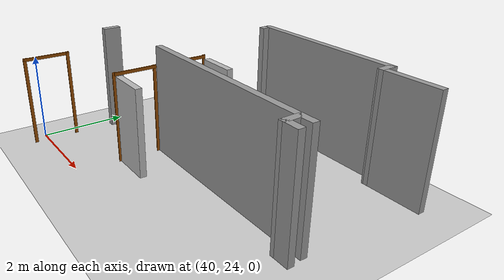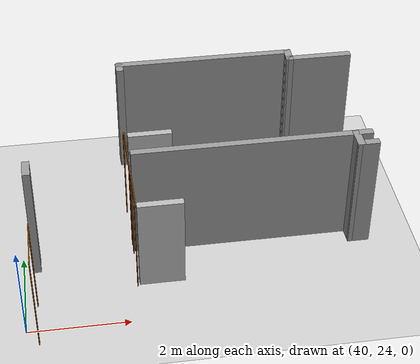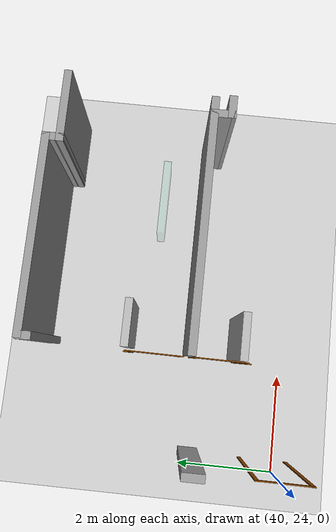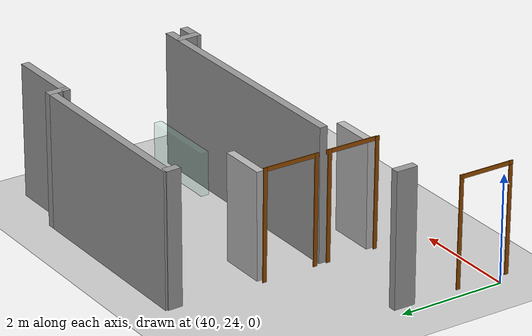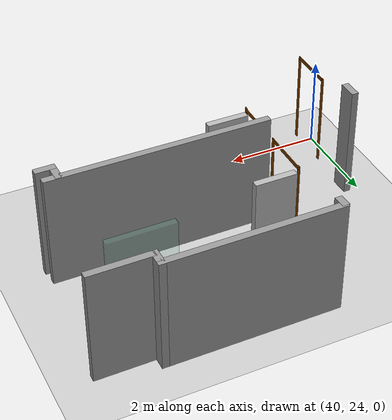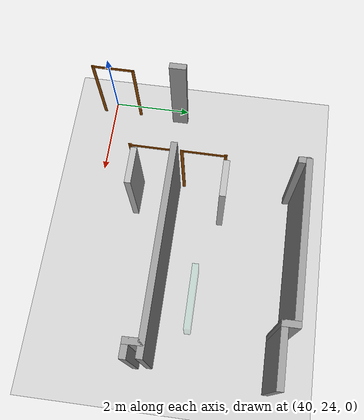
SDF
<sdf version="1.6">
 <world name="default">
  <model name="ground_plane">
   <static>1</static>
   <link name="link">
    <collision name="collision">
     <geometry><plane><normal>0 0 1</normal><size>100 100</size></plane></geometry>
     <surface><friction><ode><mu>100</mu><mu2>50</mu2></ode></friction></surface>
    </collision>
    <visual name="visual">
     <cast_shadows>0</cast_shadows>
     <geometry><plane><normal>0 0 1</normal><size>100 100</size></plane></geometry>
     <material>
      <script><uri>file://media/materials/scripts/gazebo.material</uri><name>Gazebo/Grey</name></script>
     </material>
    </visual>
   </link>
  </model>
  <model name="CVSSP">
   <pose>23.8714 24.094 0 0 -0 0</pose>
   <link name="Wall_145">
    <collision name="Wall_145_Collision">
     <geometry><box><size>3.74924 0.15 2.5</size></box></geometry>
     <pose>0 0 1.25 0 -0 0</pose>
    </collision>
    <visual name="Wall_145_Visual">
     <pose>0 0 1.25 0 -0 0</pose>
     <geometry><box><size>3.74924 0.15 2.5</size></box></geometry>
     <material>
      <script><uri>file://media/materials/scripts/gazebo.material</uri><name>Gazebo/Grey</name></script>
      <ambient>0.588235 0.588235 0.588235 1</ambient>
     </material>
    </visual>
    <pose>20.2524 4.95267 0 0 -0 0</pose>
   </link>
   <link name="Wall_146">
    <collision name="Wall_146_Collision">
     <geometry><box><size>0.407089 0.15 2.5</size></box></geometry>
     <pose>0 0 1.25 0 -0 0</pose>
    </collision>
    <visual name="Wall_146_Visual">
     <pose>0 0 1.25 0 -0 0</pose>
     <geometry><box><size>0.407089 0.15 2.5</size></box></geometry>
     <material>
      <script><uri>file://media/materials/scripts/gazebo.material</uri><name>Gazebo/Grey</name></script>
      <ambient>1 1 1 1</ambient>
     </material>
    </visual>
    <pose>22.0521 4.82421 0 0 0 -1.57054</pose>
   </link>
   <link name="Wall_147">
    <collision name="Wall_147_Collision">
     <geometry><box><size>1.39069 0.15 2.5</size></box></geometry>
     <pose>0 0 1.25 0 -0 0</pose>
    </collision>
    <visual name="Wall_147_Visual">
     <pose>0 0 1.25 0 -0 0</pose>
     <geometry><box><size>1.39069 0.15 2.5</size></box></geometry>
     <material>
      <script><uri>file://media/materials/scripts/gazebo.material</uri><name>Gazebo/Grey</name></script>
      <ambient>0.588235 0.588235 0.588235 1</ambient>
     </material>
    </visual>
    <pose>22.6726 4.69724 0 0 -0 0.002417</pose>
   </link>
   <link name="Wall_172">
    <collision name="Wall_172_Collision">
     <geometry><box><size>4.75 0.15 2.5</size></box></geometry>
     <pose>0 0 1.25 0 -0 0</pose>
    </collision>
    <visual name="Wall_172_Visual">
     <pose>0 0 1.25 0 -0 0</pose>
     <geometry><box><size>4.75 0.15 2.5</size></box></geometry>
     <material>
      <script><uri>file://media/materials/scripts/gazebo.material</uri><name>Gazebo/Grey</name></script>
      <ambient>0.588235 0.588235 0.588235 1</ambient>
     </material>
    </visual>
    <pose>20.7514 1.93058 0 0 -0 0</pose>
   </link>
   <link name="Wall_729">
    <collision name="Wall_729_Collision">
     <geometry><box><size>0.409263 0.15 2.5</size></box></geometry>
     <pose>0 0 1.25 0 -0 0</pose>
    </collision>
    <visual name="Wall_729_Visual">
     <pose>0 0 1.25 0 -0 0</pose>
     <geometry><box><size>0.409263 0.15 2.5</size></box></geometry>
     <material>
      <script><uri>file://media/materials/scripts/gazebo.material</uri><name>Gazebo/Grey</name></script>
      <ambient>1 1 1 1</ambient>
     </material>
    </visual>
    <pose>16.3949 1.72388 0 0 -0 1.57329</pose>
   </link>
   <link name="Wall_736">
    <collision name="Wall_736_Collision">
     <geometry><box><size>0.438586 0.15 2.5</size></box></geometry>
     <pose>0 0 1.25 0 -0 0</pose>
    </collision>
    <visual name="Wall_736_Visual">
     <pose>0 0 1.25 0 -0 0</pose>
     <geometry><box><size>0.438586 0.15 2.5</size></box></geometry>
     <material>
      <script><uri>file://media/materials/scripts/gazebo.material</uri><name>Gazebo/Grey</name></script>
      <ambient>1 1 1 1</ambient>
     </material>
    </visual>
    <pose>22.952 1.6054 0 0 -0 3.14159</pose>
   </link>
   <link name="Wall_737">
    <collision name="Wall_737_Collision">
     <geometry><box><size>0.457198 0.15 2.5</size></box></geometry>
     <pose>0 0 1.25 0 -0 0</pose>
    </collision>
    <visual name="Wall_737_Visual">
     <pose>0 0 1.25 0 -0 0</pose>
     <geometry><box><size>0.457198 0.15 2.5</size></box></geometry>
     <material>
      <script><uri>file://media/materials/scripts/gazebo.material</uri><name>Gazebo/Grey</name></script>
      <ambient>1 1 1 1</ambient>
     </material>
    </visual>
    <pose>22.8034 1.75843 0 0 -0 1.59936</pose>
   </link>
   <link name="Wall_82">
    <collision name="Wall_82_Collision">
     <geometry><box><size>0.279389 0.15 2.5</size></box></geometry>
     <pose>0 0 1.25 0 -0 0</pose>
    </collision>
    <visual name="Wall_82_Visual">
     <pose>0 0 1.25 0 -0 0</pose>
     <geometry><box><size>0.279389 0.15 2.5</size></box></geometry>
     <material>
      <script><uri>file://media/materials/scripts/gazebo.material</uri><name>Gazebo/Grey</name></script>
      <ambient>1 1 1 1</ambient>
     </material>
    </visual>
    <pose>18.435 4.85136 0 0 -0 1.60628</pose>
   </link>
   <static>1</static>
  </model>
  <model name="window_0_clone_clone">
   <link name="link">
    <inertial>
     <mass>0.185318</mass>
     <inertia>
      <ixx>0.0157792</ixx>
      <ixy>0</ixy>
      <ixz>0</ixz>
      <iyy>0.0398142</iyy>
      <iyz>0</iyz>
      <izz>0.0247071</izz>
     </inertia>
    </inertial>
    <visual name="visual">
     <geometry><box><size>1.50046 0.147514 0.811116</size></box></geometry>
     <material>
      <script><name>Gazebo/Grey</name><uri>file://media/materials/scripts/gazebo.material</uri></script>
      <shader type="pixel"><normal_map>__default__</normal_map></shader>
      <ambient>0.435 0.796 0.675 1</ambient>
      <diffuse>0.7 0.7 0.7 1</diffuse>
      <specular>0.01 0.01 0.01 1</specular>
      <emissive>0 0 0 1</emissive>
     </material>
     <transparency>0.8</transparency>
    </visual>
    <collision name="collision">
     <geometry><box><size>1.50046 0.147514 0.811116</size></box></geometry>
     <surface>
      <friction>
       <ode><mu>1</mu><mu2>1</mu2><fdir1>0 0 0</fdir1><slip1>0</slip1><slip2>0</slip2></ode>
       <torsional>
        <coefficient>1</coefficient>
        <patch_radius>0</patch_radius>
        <surface_radius>0</surface_radius>
        <use_patch_radius>1</use_patch_radius>
        <ode><slip>0</slip></ode>
       </torsional>
      </friction>
      <bounce><restitution_coefficient>0</restitution_coefficient><threshold>1e+06</threshold></bounce>
      <contact>
       <collide_without_contact>0</collide_without_contact>
       <collide_without_contact_bitmask>1</collide_without_contact_bitmask>
       <collide_bitmask>1</collide_bitmask>
       <ode>
        <soft_cfm>0</soft_cfm>
        <soft_erp>0.2</soft_erp>
        <kp>1e+13</kp>
        <kd>1</kd>
        <max_vel>0.01</max_vel>
        <min_depth>0</min_depth>
       </ode>
       <bullet>
        <split_impulse>1</split_impulse>
        <split_impulse_penetration_threshold>-0.01</split_impulse_penetration_threshold>
        <soft_cfm>0</soft_cfm>
        <soft_erp>0.2</soft_erp>
        <kp>1e+13</kp>
        <kd>1</kd>
       </bullet>
      </contact>
     </surface>
    </collision>
   </link>
   <static>1</static>
   <pose>45.3904 26.8226 0.904256 0 -0 0</pose>
  </model>
  <model name="door_clone">
   <link name="link_0">
    <visual name="visual">
     <pose>0 0 1 0 -0 0</pose>
     <geometry><box><size>0.9 0.15 2</size></box></geometry>
     <material>
      <script>
       <uri>model://door/materials/scripts</uri>
       <uri>model://door/materials/textures</uri>
       <name>door</name>
      </script>
     </material>
    </visual>
    <collision name="collision">
     <pose>0 0 1 0 -0 0</pose>
     <geometry><box><size>0.9 0.15 2</size></box></geometry>
    </collision>
   </link>
   <static>1</static>
   <pose>42.743 27.2361 0 0 -0 0</pose>
  </model>
  <model name="door_clone_clone">
   <link name="link_0">
    <visual name="visual">
     <pose>0 0 1 0 -0 0</pose>
     <geometry><box><size>0.9 0.15 2</size></box></geometry>
     <material>
      <script>
       <uri>model://door/materials/scripts</uri>
       <uri>model://door/materials/textures</uri>
       <name>door</name>
      </script>
     </material>
    </visual>
    <collision name="collision">
     <pose>0 0 1 0 -0 0</pose>
     <geometry><box><size>0.9 0.15 2</size></box></geometry>
    </collision>
   </link>
   <static>1</static>
   <pose>42.7008 25.0544 0 0 -0 0</pose>
  </model>
  <model name="oak_frame_clone_3_clone_0_clone_clone_clone_4">
   <link name="link">
    <inertial>
     <mass>1</mass>
     <inertia>
      <ixx>0.166667</ixx>
      <ixy>0</ixy>
      <ixz>0</ixz>
      <iyy>0.166667</iyy>
      <iyz>0</iyz>
      <izz>0.166667</izz>
     </inertia>
    </inertial>
    <visual name="visual">
     <geometry><box><size>0.018685 0.07556 1.01014</size></box></geometry>
     <material>
      <script><name>Gazebo/Grey</name><uri>file://media/materials/scripts/gazebo.material</uri></script>
      <shader type="pixel"><normal_map>__default__</normal_map></shader>
      <diffuse>0.58 0.29 0 0</diffuse>
      <ambient>0.58 0.29 0 1</ambient>
      <specular>0.01 0.01 0.01 1</specular>
      <emissive>0 0 0 1</emissive>
     </material>
    </visual>
    <collision name="collision">
     <geometry><box><size>0.018685 0.07556 1.01014</size></box></geometry>
     <surface>
      <friction>
       <ode><mu>1</mu><mu2>1</mu2><fdir1>0 0 0</fdir1><slip1>0</slip1><slip2>0</slip2></ode>
       <torsional>
        <coefficient>1</coefficient>
        <patch_radius>0</patch_radius>
        <surface_radius>0</surface_radius>
        <use_patch_radius>1</use_patch_radius>
        <ode><slip>0</slip></ode>
       </torsional>
      </friction>
      <bounce><restitution_coefficient>0</restitution_coefficient><threshold>1e+06</threshold></bounce>
      <contact>
       <collide_without_contact>0</collide_without_contact>
       <collide_without_contact_bitmask>1</collide_without_contact_bitmask>
       <collide_bitmask>1</collide_bitmask>
       <ode>
        <soft_cfm>0</soft_cfm>
        <soft_erp>0.2</soft_erp>
        <kp>1e+13</kp>
        <kd>1</kd>
        <max_vel>0.01</max_vel>
        <min_depth>0</min_depth>
       </ode>
       <bullet>
        <split_impulse>1</split_impulse>
        <split_impulse_penetration_threshold>-0.01</split_impulse_penetration_threshold>
        <soft_cfm>0</soft_cfm>
        <soft_erp>0.2</soft_erp>
        <kp>1e+13</kp>
        <kd>1</kd>
       </bullet>
      </contact>
     </surface>
    </collision>
   </link>
   <static>1</static>
   <pose>42.2238 26.7166 2.04113 1.56983 0.062428 -0.004568</pose>
  </model>
  <model name="oak_frame_clone_3_clone_0_clone_clone_clone_5">
   <link name="link">
    <inertial>
     <mass>1</mass>
     <inertia>
      <ixx>0.166667</ixx>
      <ixy>0</ixy>
      <ixz>0</ixz>
      <iyy>0.166667</iyy>
      <iyz>0</iyz>
      <izz>0.166667</izz>
     </inertia>
    </inertial>
    <visual name="visual">
     <geometry><box><size>0.018685 0.07556 1.01014</size></box></geometry>
     <material>
      <script><name>Gazebo/Grey</name><uri>file://media/materials/scripts/gazebo.material</uri></script>
      <shader type="pixel"><normal_map>__default__</normal_map></shader>
      <diffuse>0.58 0.29 0 0</diffuse>
      <ambient>0.58 0.29 0 1</ambient>
      <specular>0.01 0.01 0.01 1</specular>
      <emissive>0 0 0 1</emissive>
     </material>
    </visual>
    <collision name="collision">
     <geometry><box><size>0.018685 0.07556 1.01014</size></box></geometry>
     <surface>
      <friction>
       <ode><mu>1</mu><mu2>1</mu2><fdir1>0 0 0</fdir1><slip1>0</slip1><slip2>0</slip2></ode>
       <torsional>
        <coefficient>1</coefficient>
        <patch_radius>0</patch_radius>
        <surface_radius>0</surface_radius>
        <use_patch_radius>1</use_patch_radius>
        <ode><slip>0</slip></ode>
       </torsional>
      </friction>
      <bounce><restitution_coefficient>0</restitution_coefficient><threshold>1e+06</threshold></bounce>
      <contact>
       <collide_without_contact>0</collide_without_contact>
       <collide_without_contact_bitmask>1</collide_without_contact_bitmask>
       <collide_bitmask>1</collide_bitmask>
       <ode>
        <soft_cfm>0</soft_cfm>
        <soft_erp>0.2</soft_erp>
        <kp>1e+13</kp>
        <kd>1</kd>
        <max_vel>0.01</max_vel>
        <min_depth>0</min_depth>
       </ode>
       <bullet>
        <split_impulse>1</split_impulse>
        <split_impulse_penetration_threshold>-0.01</split_impulse_penetration_threshold>
        <soft_cfm>0</soft_cfm>
        <soft_erp>0.2</soft_erp>
        <kp>1e+13</kp>
        <kd>1</kd>
       </bullet>
      </contact>
     </surface>
    </collision>
   </link>
   <static>1</static>
   <pose>42.2271 25.4756 2.04113 1.56983 0.062428 -0.004568</pose>
  </model>
  <model name="oak_frame_clone_3_clone_1_clone_1_clone_3_clone">
   <link name="link">
    <inertial>
     <mass>1</mass>
     <inertia>
      <ixx>0.166667</ixx>
      <ixy>0</ixy>
      <ixz>0</ixz>
      <iyy>0.166667</iyy>
      <iyz>0</iyz>
      <izz>0.166667</izz>
     </inertia>
    </inertial>
    <visual name="visual">
     <geometry><box><size>0.018685 0.07556 2.09672</size></box></geometry>
     <material>
      <script><name>Gazebo/Grey</name><uri>file://media/materials/scripts/gazebo.material</uri></script>
      <shader type="pixel"><normal_map>__default__</normal_map></shader>
      <diffuse>0.58 0.29 0 0</diffuse>
      <ambient>0.58 0.29 0 1</ambient>
      <specular>0.01 0.01 0.01 1</specular>
      <emissive>0 0 0 1</emissive>
     </material>
    </visual>
    <collision name="collision">
     <geometry><box><size>0.018685 0.07556 2.09672</size></box></geometry>
     <surface>
      <friction>
       <ode><mu>1</mu><mu2>1</mu2><fdir1>0 0 0</fdir1><slip1>0</slip1><slip2>0</slip2></ode>
       <torsional>
        <coefficient>1</coefficient>
        <patch_radius>0</patch_radius>
        <surface_radius>0</surface_radius>
        <use_patch_radius>1</use_patch_radius>
        <ode><slip>0</slip></ode>
       </torsional>
      </friction>
      <bounce><restitution_coefficient>0</restitution_coefficient><threshold>1e+06</threshold></bounce>
      <contact>
       <collide_without_contact>0</collide_without_contact>
       <collide_without_contact_bitmask>1</collide_without_contact_bitmask>
       <collide_bitmask>1</collide_bitmask>
       <ode>
        <soft_cfm>0</soft_cfm>
        <soft_erp>0.2</soft_erp>
        <kp>1e+13</kp>
        <kd>1</kd>
        <max_vel>0.01</max_vel>
        <min_depth>0</min_depth>
       </ode>
       <bullet>
        <split_impulse>1</split_impulse>
        <split_impulse_penetration_threshold>-0.01</split_impulse_penetration_threshold>
        <soft_cfm>0</soft_cfm>
        <soft_erp>0.2</soft_erp>
        <kp>1e+13</kp>
        <kd>1</kd>
       </bullet>
      </contact>
     </surface>
    </collision>
   </link>
   <static>1</static>
   <pose>42.2096 27.208 1.03352 -0.008142 0.000764 -3.13056</pose>
  </model>
  <model name="oak_frame_clone_3_clone_1_clone_1_clone_3_clone_0">
   <link name="link">
    <inertial>
     <mass>1</mass>
     <inertia>
      <ixx>0.166667</ixx>
      <ixy>0</ixy>
      <ixz>0</ixz>
      <iyy>0.166667</iyy>
      <iyz>0</iyz>
      <izz>0.166667</izz>
     </inertia>
    </inertial>
    <visual name="visual">
     <geometry><box><size>0.018685 0.07556 2.09672</size></box></geometry>
     <material>
      <script><name>Gazebo/Grey</name><uri>file://media/materials/scripts/gazebo.material</uri></script>
      <shader type="pixel"><normal_map>__default__</normal_map></shader>
      <diffuse>0.58 0.29 0 0</diffuse>
      <ambient>0.58 0.29 0 1</ambient>
      <specular>0.01 0.01 0.01 1</specular>
      <emissive>0 0 0 1</emissive>
     </material>
    </visual>
    <collision name="collision">
     <geometry><box><size>0.018685 0.07556 2.09672</size></box></geometry>
     <surface>
      <friction>
       <ode><mu>1</mu><mu2>1</mu2><fdir1>0 0 0</fdir1><slip1>0</slip1><slip2>0</slip2></ode>
       <torsional>
        <coefficient>1</coefficient>
        <patch_radius>0</patch_radius>
        <surface_radius>0</surface_radius>
        <use_patch_radius>1</use_patch_radius>
        <ode><slip>0</slip></ode>
       </torsional>
      </friction>
      <bounce><restitution_coefficient>0</restitution_coefficient><threshold>1e+06</threshold></bounce>
      <contact>
       <collide_without_contact>0</collide_without_contact>
       <collide_without_contact_bitmask>1</collide_without_contact_bitmask>
       <collide_bitmask>1</collide_bitmask>
       <ode>
        <soft_cfm>0</soft_cfm>
        <soft_erp>0.2</soft_erp>
        <kp>1e+13</kp>
        <kd>1</kd>
        <max_vel>0.01</max_vel>
        <min_depth>0</min_depth>
       </ode>
       <bullet>
        <split_impulse>1</split_impulse>
        <split_impulse_penetration_threshold>-0.01</split_impulse_penetration_threshold>
        <soft_cfm>0</soft_cfm>
        <soft_erp>0.2</soft_erp>
        <kp>1e+13</kp>
        <kd>1</kd>
       </bullet>
      </contact>
     </surface>
    </collision>
   </link>
   <static>1</static>
   <pose>42.2228 26.1854 1.03352 -0.008142 0.000764 -3.13056</pose>
  </model>
  <model name="oak_frame_clone_3_clone_1_clone_1_clone_3_clone_1">
   <link name="link">
    <inertial>
     <mass>1</mass>
     <inertia>
      <ixx>0.166667</ixx>
      <ixy>0</ixy>
      <ixz>0</ixz>
      <iyy>0.166667</iyy>
      <iyz>0</iyz>
      <izz>0.166667</izz>
     </inertia>
    </inertial>
    <visual name="visual">
     <geometry><box><size>0.018685 0.07556 2.09672</size></box></geometry>
     <material>
      <script><name>Gazebo/Grey</name><uri>file://media/materials/scripts/gazebo.material</uri></script>
      <shader type="pixel"><normal_map>__default__</normal_map></shader>
      <diffuse>0.58 0.29 0 0</diffuse>
      <ambient>0.58 0.29 0 1</ambient>
      <specular>0.01 0.01 0.01 1</specular>
      <emissive>0 0 0 1</emissive>
     </material>
    </visual>
    <collision name="collision">
     <geometry><box><size>0.018685 0.07556 2.09672</size></box></geometry>
     <surface>
      <friction>
       <ode><mu>1</mu><mu2>1</mu2><fdir1>0 0 0</fdir1><slip1>0</slip1><slip2>0</slip2></ode>
       <torsional>
        <coefficient>1</coefficient>
        <patch_radius>0</patch_radius>
        <surface_radius>0</surface_radius>
        <use_patch_radius>1</use_patch_radius>
        <ode><slip>0</slip></ode>
       </torsional>
      </friction>
      <bounce><restitution_coefficient>0</restitution_coefficient><threshold>1e+06</threshold></bounce>
      <contact>
       <collide_without_contact>0</collide_without_contact>
       <collide_without_contact_bitmask>1</collide_without_contact_bitmask>
       <collide_bitmask>1</collide_bitmask>
       <ode>
        <soft_cfm>0</soft_cfm>
        <soft_erp>0.2</soft_erp>
        <kp>1e+13</kp>
        <kd>1</kd>
        <max_vel>0.01</max_vel>
        <min_depth>0</min_depth>
       </ode>
       <bullet>
        <split_impulse>1</split_impulse>
        <split_impulse_penetration_threshold>-0.01</split_impulse_penetration_threshold>
        <soft_cfm>0</soft_cfm>
        <soft_erp>0.2</soft_erp>
        <kp>1e+13</kp>
        <kd>1</kd>
       </bullet>
      </contact>
     </surface>
    </collision>
   </link>
   <static>1</static>
   <pose>42.2239 25.922 1.03352 -0.008142 0.000764 -3.13056</pose>
  </model>
  <model name="oak_frame_clone_3_clone_1_clone_1_clone_3_clone_2">
   <link name="link">
    <inertial>
     <mass>1</mass>
     <inertia>
      <ixx>0.166667</ixx>
      <ixy>0</ixy>
      <ixz>0</ixz>
      <iyy>0.166667</iyy>
      <iyz>0</iyz>
      <izz>0.166667</izz>
     </inertia>
    </inertial>
    <visual name="visual">
     <geometry><box><size>0.018685 0.07556 2.09672</size></box></geometry>
     <material>
      <script><name>Gazebo/Grey</name><uri>file://media/materials/scripts/gazebo.material</uri></script>
      <shader type="pixel"><normal_map>__default__</normal_map></shader>
      <diffuse>0.58 0.29 0 0</diffuse>
      <ambient>0.58 0.29 0 1</ambient>
      <specular>0.01 0.01 0.01 1</specular>
      <emissive>0 0 0 1</emissive>
     </material>
    </visual>
    <collision name="collision">
     <geometry><box><size>0.018685 0.07556 2.09672</size></box></geometry>
     <surface>
      <friction>
       <ode><mu>1</mu><mu2>1</mu2><fdir1>0 0 0</fdir1><slip1>0</slip1><slip2>0</slip2></ode>
       <torsional>
        <coefficient>1</coefficient>
        <patch_radius>0</patch_radius>
        <surface_radius>0</surface_radius>
        <use_patch_radius>1</use_patch_radius>
        <ode><slip>0</slip></ode>
       </torsional>
      </friction>
      <bounce><restitution_coefficient>0</restitution_coefficient><threshold>1e+06</threshold></bounce>
      <contact>
       <collide_without_contact>0</collide_without_contact>
       <collide_without_contact_bitmask>1</collide_without_contact_bitmask>
       <collide_bitmask>1</collide_bitmask>
       <ode>
        <soft_cfm>0</soft_cfm>
        <soft_erp>0.2</soft_erp>
        <kp>1e+13</kp>
        <kd>1</kd>
        <max_vel>0.01</max_vel>
        <min_depth>0</min_depth>
       </ode>
       <bullet>
        <split_impulse>1</split_impulse>
        <split_impulse_penetration_threshold>-0.01</split_impulse_penetration_threshold>
        <soft_cfm>0</soft_cfm>
        <soft_erp>0.2</soft_erp>
        <kp>1e+13</kp>
        <kd>1</kd>
       </bullet>
      </contact>
     </surface>
    </collision>
   </link>
   <static>1</static>
   <pose>42.2091 24.974 1.03352 -0.008142 0.000764 -3.13056</pose>
  </model>
  <model name="oak_frame_clone_3_clone_1_clone_1_clone_3_clone_3">
   <link name="link">
    <inertial>
     <mass>1</mass>
     <inertia>
      <ixx>0.166667</ixx>
      <ixy>0</ixy>
      <ixz>0</ixz>
      <iyy>0.166667</iyy>
      <iyz>0</iyz>
      <izz>0.166667</izz>
     </inertia>
    </inertial>
    <visual name="visual">
     <geometry><box><size>0.018685 0.07556 2.09672</size></box></geometry>
     <material>
      <script><name>Gazebo/Grey</name><uri>file://media/materials/scripts/gazebo.material</uri></script>
      <shader type="pixel"><normal_map>__default__</normal_map></shader>
      <diffuse>0.58 0.29 0 0</diffuse>
      <ambient>0.58 0.29 0 1</ambient>
      <specular>0.01 0.01 0.01 1</specular>
      <emissive>0 0 0 1</emissive>
     </material>
    </visual>
    <collision name="collision">
     <geometry><box><size>0.018685 0.07556 2.09672</size></box></geometry>
     <surface>
      <friction>
       <ode><mu>1</mu><mu2>1</mu2><fdir1>0 0 0</fdir1><slip1>0</slip1><slip2>0</slip2></ode>
       <torsional>
        <coefficient>1</coefficient>
        <patch_radius>0</patch_radius>
        <surface_radius>0</surface_radius>
        <use_patch_radius>1</use_patch_radius>
        <ode><slip>0</slip></ode>
       </torsional>
      </friction>
      <bounce><restitution_coefficient>0</restitution_coefficient><threshold>1e+06</threshold></bounce>
      <contact>
       <collide_without_contact>0</collide_without_contact>
       <collide_without_contact_bitmask>1</collide_without_contact_bitmask>
       <collide_bitmask>1</collide_bitmask>
       <ode>
        <soft_cfm>0</soft_cfm>
        <soft_erp>0.2</soft_erp>
        <kp>1e+13</kp>
        <kd>1</kd>
        <max_vel>0.01</max_vel>
        <min_depth>0</min_depth>
       </ode>
       <bullet>
        <split_impulse>1</split_impulse>
        <split_impulse_penetration_threshold>-0.01</split_impulse_penetration_threshold>
        <soft_cfm>0</soft_cfm>
        <soft_erp>0.2</soft_erp>
        <kp>1e+13</kp>
        <kd>1</kd>
       </bullet>
      </contact>
     </surface>
    </collision>
   </link>
   <static>1</static>
   <pose>40.232 23.7009 1.03352 -0.008142 0.000764 -3.13056</pose>
  </model>
  <model name="oak_frame_clone_3_clone_1_clone_1_clone_3_clone_4">
   <link name="link">
    <inertial>
     <mass>1</mass>
     <inertia>
      <ixx>0.166667</ixx>
      <ixy>0</ixy>
      <ixz>0</ixz>
      <iyy>0.166667</iyy>
      <iyz>0</iyz>
      <izz>0.166667</izz>
     </inertia>
    </inertial>
    <visual name="visual">
     <geometry><box><size>0.018685 0.07556 2.09672</size></box></geometry>
     <material>
      <script><name>Gazebo/Grey</name><uri>file://media/materials/scripts/gazebo.material</uri></script>
      <shader type="pixel"><normal_map>__default__</normal_map></shader>
      <diffuse>0.58 0.29 0 0</diffuse>
      <ambient>0.58 0.29 0 1</ambient>
      <specular>0.01 0.01 0.01 1</specular>
      <emissive>0 0 0 1</emissive>
     </material>
    </visual>
    <collision name="collision">
     <geometry><box><size>0.018685 0.07556 2.09672</size></box></geometry>
     <surface>
      <friction>
       <ode><mu>1</mu><mu2>1</mu2><fdir1>0 0 0</fdir1><slip1>0</slip1><slip2>0</slip2></ode>
       <torsional>
        <coefficient>1</coefficient>
        <patch_radius>0</patch_radius>
        <surface_radius>0</surface_radius>
        <use_patch_radius>1</use_patch_radius>
        <ode><slip>0</slip></ode>
       </torsional>
      </friction>
      <bounce><restitution_coefficient>0</restitution_coefficient><threshold>1e+06</threshold></bounce>
      <contact>
       <collide_without_contact>0</collide_without_contact>
       <collide_without_contact_bitmask>1</collide_without_contact_bitmask>
       <collide_bitmask>1</collide_bitmask>
       <ode>
        <soft_cfm>0</soft_cfm>
        <soft_erp>0.2</soft_erp>
        <kp>1e+13</kp>
        <kd>1</kd>
        <max_vel>0.01</max_vel>
        <min_depth>0</min_depth>
       </ode>
       <bullet>
        <split_impulse>1</split_impulse>
        <split_impulse_penetration_threshold>-0.01</split_impulse_penetration_threshold>
        <soft_cfm>0</soft_cfm>
        <soft_erp>0.2</soft_erp>
        <kp>1e+13</kp>
        <kd>1</kd>
       </bullet>
      </contact>
     </surface>
    </collision>
   </link>
   <static>1</static>
   <pose>40.2381 24.6938 1.03352 -0.008142 0.000764 -3.13056</pose>
  </model>
  <model name="oak_frame_clone_3_clone_0_clone_clone_clone_5_clone">
   <link name="link">
    <inertial>
     <mass>1</mass>
     <inertia>
      <ixx>0.166667</ixx>
      <ixy>0</ixy>
      <ixz>0</ixz>
      <iyy>0.166667</iyy>
      <iyz>0</iyz>
      <izz>0.166667</izz>
     </inertia>
    </inertial>
    <visual name="visual">
     <geometry><box><size>0.018685 0.07556 1.01014</size></box></geometry>
     <material>
      <script><name>Gazebo/Grey</name><uri>file://media/materials/scripts/gazebo.material</uri></script>
      <shader type="pixel"><normal_map>__default__</normal_map></shader>
      <diffuse>0.58 0.29 0 0</diffuse>
      <ambient>0.58 0.29 0 1</ambient>
      <specular>0.01 0.01 0.01 1</specular>
      <emissive>0 0 0 1</emissive>
     </material>
    </visual>
    <collision name="collision">
     <geometry><box><size>0.018685 0.07556 1.01014</size></box></geometry>
     <surface>
      <friction>
       <ode><mu>1</mu><mu2>1</mu2><fdir1>0 0 0</fdir1><slip1>0</slip1><slip2>0</slip2></ode>
       <torsional>
        <coefficient>1</coefficient>
        <patch_radius>0</patch_radius>
        <surface_radius>0</surface_radius>
        <use_patch_radius>1</use_patch_radius>
        <ode><slip>0</slip></ode>
       </torsional>
      </friction>
      <bounce><restitution_coefficient>0</restitution_coefficient><threshold>1e+06</threshold></bounce>
      <contact>
       <collide_without_contact>0</collide_without_contact>
       <collide_without_contact_bitmask>1</collide_without_contact_bitmask>
       <collide_bitmask>1</collide_bitmask>
       <ode>
        <soft_cfm>0</soft_cfm>
        <soft_erp>0.2</soft_erp>
        <kp>1e+13</kp>
        <kd>1</kd>
        <max_vel>0.01</max_vel>
        <min_depth>0</min_depth>
       </ode>
       <bullet>
        <split_impulse>1</split_impulse>
        <split_impulse_penetration_threshold>-0.01</split_impulse_penetration_threshold>
        <soft_cfm>0</soft_cfm>
        <soft_erp>0.2</soft_erp>
        <kp>1e+13</kp>
        <kd>1</kd>
       </bullet>
      </contact>
     </surface>
    </collision>
   </link>
   <static>1</static>
   <pose>40.2351 24.1885 2.04113 1.56983 0.062428 -0.004568</pose>
  </model>
 </world>
</sdf>
